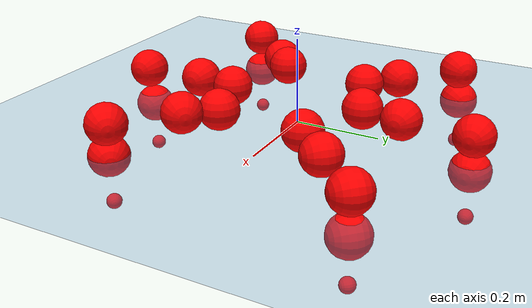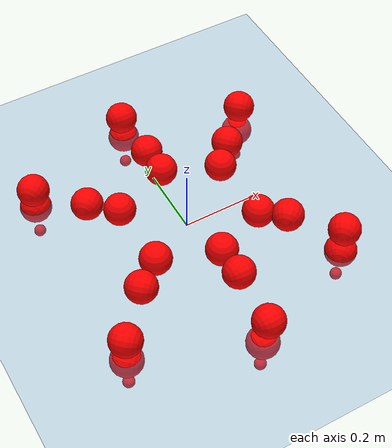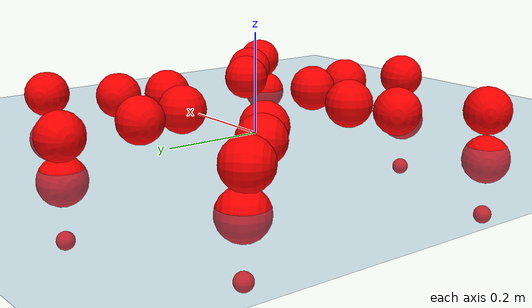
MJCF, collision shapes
<mujoco model="Golem">
  <compiler angle="radian" assetdir="assets" balanceinertia="true" inertiafromgeom="false"/>

  <option timestep="0.005" density="1.2" viscosity="2e-05"/>

  <size nkey="1"/>

  <visual>
    <quality shadowsize="8192"/>
    <map shadowclip="0.5"/>
  </visual>

  <default>
    <default class="/">
      <joint armature="0.01" damping="0.01" frictionloss="0.01"/>
      <geom contype="0" conaffinity="0" group="1" solref="-1000 -80"/>
      <site size="0.01 0.005 0.005" group="5"/>
      <general forcelimited="true" biastype="affine" gainprm="25" biasprm="0 -25 -0.5"/>
      <default class="visual">
        <geom type="mesh" group="2"/>
      </default>
      <default class="collision">
        <geom group="3"/>
      </default>
      <default class="foot">
        <geom size="0.01 0 0" condim="6" group="4" priority="1" solimp="0.015 1 0.01"/>
      </default>
      <default class="reward_collision_sphere">
        <geom group="5" rgba="1 0 0 1"/>
      </default>
    </default>
  </default>

  <asset>
    <texture type="skybox" colorspace="auto" name="//unnamed_texture_0" builtin="gradient" rgb1="0.95 0.95 0.95" rgb2="0.95 0.95 0.95" width="100" height="600"/>
    <texture type="2d" colorspace="auto" name="texplane" builtin="checker" rgb1="0.345 0.575 0.748" rgb2="0.345 0.575 0.748" markrgb="1 1 1" width="512" height="512"/>
    <material name="MatPlane" class="/" texture="texplane" texuniform="true" texrepeat="2 2" specular="0.9"/>
    <mesh name="body" class="/" file="body.stl" scale="0.001 0.001 0.001"/>
    <mesh name="coxa" class="/" file="coxa.stl" scale="0.001 0.001 0.001"/>
    <mesh name="femur" class="/" file="femur.stl" scale="0.001 0.001 0.001"/>
    <mesh name="tibia" class="/" file="tibia.stl" scale="0.001 0.001 0.001"/>
    <mesh name="tarsus" class="/" file="tarsus.stl" scale="0.001 0.001 0.001"/>
  </asset>

  <worldbody>
    <geom name="floor" class="/" size="100 100 0.125" type="plane" group="0" material="MatPlane"/>
    <light name="toplight_shadow" class="/" pos="0 0 5" dir="0.0990148 0.0990148 -0.990148" type="directional" ambient="0.04 0.04 0.04" diffuse="0.55 0.55 0.55" specular="0.12 0.12 0.12"/>
    <light name="toplight_fill" class="/" pos="0 0 5" dir="0.0990148 0.0990148 -0.990148" type="directional" castshadow="false" ambient="0.04 0.04 0.04" diffuse="0.3 0.3 0.3" specular="0.08 0.08 0.08"/>
    <body name="trunk" pos="0.0060921 0.000424682 0.00421391" quat="1 -9.50637e-05 -2.29102e-05 -8.96566e-06">
      <inertial pos="-0.000196028 0.00139418 0.00941817" quat="0.998795 -0.0298378 -0.00463013 0.0386781" mass="5.76275" diaginertia="0.0120605 0.0668241 0.00859462"/>
      <joint name="//unnamed_joint_0" type="free"/>
      <geom name="//unnamed_geom_1" class="/" pos="0 0 0.0617452" quat="1 0 0 0" type="mesh" rgba="0.9 0.9 0.9 1" mesh="body"/>
      <site name="imu" class="/" pos="0.115355 0.0102099 0.115506" size="0.0115002"/>
      <camera name="track" class="/" pos="0 -2.91699 0" quat="0.707107 0.707107 0 0" mode="trackcom"/>
      <camera name="ego_camera" class="/" pos="0.133484 0 0.0964769" quat="-0.5 -0.5 0.5 0.5"/>
      <body name="coxa_RR" pos="-0.182451 -0.128376 0.0680439" quat="0.38297 -0.000482807 -0.00084021 -0.92376">
        <inertial pos="0.00230897 0.000720924 0.00331197" quat="0.999613 -0.0142686 0.00132495 -0.0238379" mass="0.331739" diaginertia="0.0110831 0.0702065 0.00907433"/>
        <joint name="coxa_joint_RR" class="/" pos="0 0 0" axis="0.016013 0.0179449 -0.999711" range="-3.07257 2.94407" armature="0.013691" damping="0.00721893" frictionloss="0.0142505"/>
        <geom name="//unnamed_geom_2" class="/" type="mesh" rgba="0.2 0.2 0.2 1" mesh="coxa"/>
        <geom name="//unnamed_geom_3" class="reward_collision_sphere" size="0.0460009" pos="-0.0308041 0 0"/>
        <body name="femur_RR" pos="0.0604235 -0.0115868 -0.00978464" quat="0.499918 -0.49981 0.500123 0.500149">
          <inertial pos="0.00270306 -0.00957395 -0.0110811" quat="0.999999 0.000103222 0.00123813 -0.000681769" mass="0.304025" diaginertia="0.0106725 0.0656628 0.00752127"/>
          <joint name="femur_joint_RR" class="/" pos="0 0 0" axis="0.00283026 -0.00561727 -0.99998" stiffness="0.00547184" range="-3.13908 3.1428" armature="0.0104163" damping="0" frictionloss="0.00502344"/>
          <geom name="//unnamed_geom_4" class="/" type="mesh" rgba="0.9 0.9 0.9 1" mesh="femur"/>
          <geom name="//unnamed_geom_5" class="reward_collision_sphere" size="0.0460009"/>
          <body name="tibia_RR" pos="-0.00366025 -0.16727 0.0110883" quat="0.000739971 1 0.000249222 -0.000106796">
            <inertial pos="-0.00456607 0.0100931 -0.0024944" quat="0.999985 0.00165714 -0.00479983 0.00221911" mass="0.294756" diaginertia="0.0117679 0.0682339 0.00848306"/>
            <joint name="tibia_joint_RR" class="/" pos="0 0 0" axis="-0.00670249 0.0109792 0.999917" range="-3.13965 3.14093" armature="0.0122577" damping="0" frictionloss="0.0146524"/>
            <geom name="//unnamed_geom_6" class="/" type="mesh" rgba="0.2 0.2 0.2 1" mesh="tibia"/>
            <geom name="//unnamed_geom_7" class="reward_collision_sphere" size="0.0460009"/>
            <body name="tarsus_RR" pos="0.0941841 0.00206504 0.000798866" quat="1 -0.000200384 -0.000526036 0.000116355">
              <inertial pos="0.0670992 0.00207827 -0.000506523" quat="0.500538 0.515761 0.500349 0.482808" mass="0.283541" diaginertia="0.010272 0.0681899 0.00852836"/>
              <joint name="tarsus_joint_RR" class="/" pos="0 0 0" axis="0.00638141 0.00409883 0.999971" range="-2.92 2.90924" armature="0.0124159" damping="0" frictionloss="0.0125217"/>
              <geom name="//unnamed_geom_8" class="/" type="mesh" rgba="0.9 0.9 0.9 1" mesh="tarsus"/>
              <geom name="foot_1" class="foot" size="0.00906875" pos="0.115002 0 0" quat="0 -0.707107 0 0.707107"/>
              <geom name="//unnamed_geom_10" class="reward_collision_sphere" size="0.0460009"/>
              <geom name="//unnamed_geom_11" class="reward_collision_sphere" size="0.0172503" pos="0.110381 0 0"/>
              <site name="foot_1" class="foot" pos="0.115002 0 0" quat="0 -0.707107 0 0.707107" size="0.0115002"/>
            </body>
          </body>
        </body>
      </body>
      <body name="coxa_RM" pos="0.00976607 -0.193453 0.0629793" quat="0.706325 -0.00130368 0.000537497 -0.707887">
        <inertial pos="0.00173578 0.00504445 0.00263246" quat="0.998602 -0.0216428 0.0373744 -0.0304834" mass="0.275615" diaginertia="0.010134 0.0653052 0.00736654"/>
        <joint name="coxa_joint_RM" class="/" pos="0 0 0" axis="0.00708035 0.000693952 -0.999975" range="-3.13208 3.14264" armature="0.0121766" damping="0.00911299" frictionloss="0.0110567"/>
        <geom name="//unnamed_geom_12" class="/" type="mesh" rgba="0.2 0.2 0.2 1" mesh="coxa"/>
        <geom name="//unnamed_geom_13" class="reward_collision_sphere" size="0.0460009" pos="-0.0308041 0 0"/>
        <body name="femur_RM" pos="0.0587972 -0.000886646 0.00483717" quat="0.498342 -0.500491 0.497527 0.503618">
          <inertial pos="0.00992611 0.00470392 0.0113242" quat="0.999988 -0.000921649 -0.0042983 0.00213174" mass="0.271259" diaginertia="0.0112488 0.0661034 0.00793993"/>
          <joint name="femur_joint_RM" class="/" pos="0 0 0" axis="-0.00991644 -0.0192886 -0.999765" range="-3.15912 2.9469" armature="0.0101904" damping="0.0144983" frictionloss="0.0166783"/>
          <geom name="//unnamed_geom_14" class="/" type="mesh" rgba="0.9 0.9 0.9 1" mesh="femur"/>
          <geom name="//unnamed_geom_15" class="reward_collision_sphere" size="0.0460009"/>
          <body name="tibia_RM" pos="0.00703313 -0.162484 -0.0110328" quat="0.000250079 0.999998 0.0005537 -0.00189057">
            <inertial pos="-1.75314e-05 -0.00126494 -0.000975168" quat="0.999996 -0.00196979 -0.00118537 -0.00150699" mass="0.299115" diaginertia="0.0101791 0.0598905 0.00815465"/>
            <joint name="tibia_joint_RM" class="/" pos="0 0 0" axis="-0.0118645 -0.0471395 0.998818" stiffness="0.00746983" range="-3.19172 3.30913" armature="0.0111456" damping="0.0279436" frictionloss="0.00951284"/>
            <geom name="//unnamed_geom_16" class="/" type="mesh" rgba="0.2 0.2 0.2 1" mesh="tibia"/>
            <geom name="//unnamed_geom_17" class="reward_collision_sphere" size="0.0460009"/>
            <body name="tarsus_RM" pos="0.0971094 -0.00173874 0.00954981" quat="1 0.000116478 0.000183384 -0.000191741">
              <inertial pos="0.0626352 0.00222695 -0.00610245" quat="0.470096 0.514375 0.511123 0.503171" mass="0.295553" diaginertia="0.010361 0.0639079 0.00924113"/>
              <joint name="tarsus_joint_RM" class="/" pos="0 0 0" axis="0.00401552 0.0109229 0.999932" stiffness="0.020427" range="-2.96585 3.34482" armature="0.0114299" damping="0" frictionloss="0.012045"/>
              <geom name="//unnamed_geom_18" class="/" type="mesh" rgba="0.9 0.9 0.9 1" mesh="tarsus"/>
              <geom name="foot_2" class="foot" size="0.0106887" pos="0.115002 0 0" quat="0 -0.707107 0 0.707107"/>
              <geom name="//unnamed_geom_20" class="reward_collision_sphere" size="0.0460009"/>
              <geom name="//unnamed_geom_21" class="reward_collision_sphere" size="0.0172503" pos="0.110381 0 0"/>
              <site name="foot_2" class="foot" pos="0.115002 0 0" quat="0 -0.707107 0 0.707107" size="0.0115002"/>
            </body>
          </body>
        </body>
      </body>
      <body name="coxa_RF" pos="0.1829 -0.124615 0.0702976" quat="0.924723 0.000717171 -0.000667609 -0.380639">
        <inertial pos="-0.0023466 0.0120884 -0.000361378" quat="0.999972 0.00325495 -0.00607161 -0.00292656" mass="0.290091" diaginertia="0.0109858 0.0618602 0.00781913"/>
        <joint name="coxa_joint_RF" class="/" pos="0 0 0" axis="0.00574758 0.00891915 -0.999944" stiffness="0.00591516" range="-3.14558 3.01138" armature="0.0108798" damping="0.0410175" frictionloss="0.0106306"/>
        <geom name="//unnamed_geom_22" class="/" type="mesh" rgba="0.2 0.2 0.2 1" mesh="coxa"/>
        <geom name="//unnamed_geom_23" class="reward_collision_sphere" size="0.0460009" pos="-0.0308041 0 0"/>
        <body name="femur_RF" pos="0.0507256 0.0037458 0.00475689" quat="0.499818 -0.500603 0.49922 0.500358">
          <inertial pos="0.000672507 -0.000275748 -0.00752006" quat="0.99998 0.00021685 -0.00505301 0.00379868" mass="0.311742" diaginertia="0.0112535 0.070935 0.0077195"/>
          <joint name="femur_joint_RF" class="/" pos="0 0 0" axis="0.00399914 0.00649118 -0.999971" stiffness="0.00327787" range="-3.33293 3.12718" armature="0.0123277" damping="0.0162913" frictionloss="0.0154255"/>
          <geom name="//unnamed_geom_24" class="/" type="mesh" rgba="0.9 0.9 0.9 1" mesh="femur"/>
          <geom name="//unnamed_geom_25" class="reward_collision_sphere" size="0.0460009"/>
          <body name="tibia_RF" pos="0.00621289 -0.157544 -0.00365903" quat="0.000438917 1 -0.000855868 -0.000255271">
            <inertial pos="-0.00615029 0.00403932 0.000221643" quat="0.998597 0.0229262 0.0217523 -0.0424883" mass="0.281854" diaginertia="0.0117789 0.0702976 0.0082055"/>
            <joint name="tibia_joint_RF" class="/" pos="0 0 0" axis="0.0302095 0.0197841 0.999348" stiffness="0.00339721" range="-3.13867 3.14049" armature="0.0114248" damping="0" frictionloss="0.0107209"/>
            <geom name="//unnamed_geom_26" class="/" type="mesh" rgba="0.2 0.2 0.2 1" mesh="tibia"/>
            <geom name="//unnamed_geom_27" class="reward_collision_sphere" size="0.0460009"/>
            <body name="tarsus_RF" pos="0.0791779 9.40209e-05 0.0121585" quat="0.999997 -0.00157291 -0.000452591 -0.00167344">
              <inertial pos="0.0585737 0.00840775 -0.00172777" quat="0.497754 0.497131 0.497029 0.508" mass="0.349862" diaginertia="0.0117784 0.0737291 0.00806594"/>
              <joint name="tarsus_joint_RF" class="/" pos="0 0 0" axis="-0.0360687 0.0160675 0.99922" range="-2.99837 3.14191" armature="0.0113716" damping="0" frictionloss="0.0123781"/>
              <geom name="//unnamed_geom_28" class="/" type="mesh" rgba="0.9 0.9 0.9 1" mesh="tarsus"/>
              <geom name="foot_3" class="foot" size="0.0114841" pos="0.115002 0 0" quat="0 -0.707107 0 0.707107"/>
              <geom name="//unnamed_geom_30" class="reward_collision_sphere" size="0.0460009"/>
              <geom name="//unnamed_geom_31" class="reward_collision_sphere" size="0.0172503" pos="0.110381 0 0"/>
              <site name="foot_3" class="foot" pos="0.115002 0 0" quat="0 -0.707107 0 0.707107" size="0.0115002"/>
            </body>
          </body>
        </body>
      </body>
      <body name="coxa_LR" pos="-0.18518 0.120684 0.0554835" quat="0.381596 -0.0013832 0.000467965 0.924328">
        <inertial pos="0.000268462 0.000577446 -0.00837928" quat="0.999983 -0.000781938 -0.00471943 0.00344489" mass="0.300715" diaginertia="0.0112156 0.0630752 0.00915883"/>
        <joint name="coxa_joint_LR" class="/" pos="0 0 0" axis="-0.00419125 0.00169535 -0.99999" stiffness="0.0349457" range="-3.06395 3.09935" armature="0.0132461" damping="0.0370598" frictionloss="0.0172637"/>
        <geom name="//unnamed_geom_32" class="/" type="mesh" rgba="0.2 0.2 0.2 1" mesh="coxa"/>
        <geom name="//unnamed_geom_33" class="reward_collision_sphere" size="0.0460009" pos="-0.0308041 0 0"/>
        <body name="femur_LR" pos="0.0627359 0.00614523 0.000103367" quat="0.500143 -0.499869 0.500163 0.499825">
          <inertial pos="-0.00907698 0.00318127 -0.0067089" quat="0.999934 -0.00403023 -0.0100559 0.00369416" mass="0.341136" diaginertia="0.0109612 0.0651599 0.00808392"/>
          <joint name="femur_joint_LR" class="/" pos="0 0 0" axis="0.00187195 -0.0177908 0.99984" range="-2.91845 3.3309" armature="0.0171981" damping="0.0196124" frictionloss="0.0125021"/>
          <geom name="//unnamed_geom_34" class="/" type="mesh" rgba="0.9 0.9 0.9 1" mesh="femur"/>
          <geom name="//unnamed_geom_35" class="reward_collision_sphere" size="0.0460009"/>
          <body name="tibia_LR" pos="-0.00574199 -0.159853 -0.0018018" quat="-0.00172224 0.999998 -0.00116089 -0.000490487">
            <inertial pos="-0.0044245 0.00703848 -0.000871762" quat="0.999988 -0.0011498 -0.00100653 0.00460074" mass="0.269828" diaginertia="0.0110586 0.0579157 0.00873735"/>
            <joint name="tibia_joint_LR" class="/" pos="0 0 0" axis="0.0242065 -0.0359125 -0.999062" stiffness="0.0222312" range="-3.12449 3.30361" armature="0.0128784" damping="0" frictionloss="0.0124014"/>
            <geom name="//unnamed_geom_36" class="/" type="mesh" rgba="0.2 0.2 0.2 1" mesh="tibia"/>
            <geom name="//unnamed_geom_37" class="reward_collision_sphere" size="0.0460009"/>
            <body name="tarsus_LR" pos="0.0793884 0.00415014 0.00572238" quat="0.999988 0.000369138 0.00259387 0.00409664">
              <inertial pos="0.0697628 0.00771918 0.00143589" quat="0.501168 0.500793 0.498306 0.499727" mass="0.305841" diaginertia="0.011191 0.0725837 0.00775403"/>
              <joint name="tarsus_joint_LR" class="/" pos="0 0 0" axis="-1.53691e-06 -3.4399e-05 -1" stiffness="0.0269724" range="-3.17332 3.17395" armature="0.00973294" damping="0.0139113" frictionloss="0.00634204"/>
              <geom name="//unnamed_geom_38" class="/" type="mesh" rgba="0.9 0.9 0.9 1" mesh="tarsus"/>
              <geom name="foot_4" class="foot" size="0.0120761" pos="0.115002 0 0" quat="0.707107 0 -0.707107 0"/>
              <geom name="//unnamed_geom_40" class="reward_collision_sphere" size="0.0460009"/>
              <geom name="//unnamed_geom_41" class="reward_collision_sphere" size="0.0172503" pos="0.110381 0 0"/>
              <site name="foot_4" class="foot" pos="0.115002 0 0" quat="0.707107 0 -0.707107 0" size="0.0115002"/>
            </body>
          </body>
        </body>
      </body>
      <body name="coxa_LM" pos="0.00253617 0.19533 0.0648861" quat="0.707688 -0.000623522 -0.000936529 0.706524">
        <inertial pos="-0.00870321 0.000914937 -0.00199607" quat="0.999935 0.0100696 -0.00214812 -0.00487535" mass="0.335336" diaginertia="0.010809 0.0730744 0.0093759"/>
        <joint name="coxa_joint_LM" class="/" pos="0 0 0" axis="-0.00454002 0.0149315 -0.999878" range="-3.1229 3.1254" armature="0.012297" damping="0.0276365" frictionloss="0.0145009"/>
        <geom name="//unnamed_geom_42" class="/" type="mesh" rgba="0.2 0.2 0.2 1" mesh="coxa"/>
        <geom name="//unnamed_geom_43" class="reward_collision_sphere" size="0.0460009" pos="-0.0308041 0 0"/>
        <body name="femur_LM" pos="0.0596495 -0.000602796 -0.00747835" quat="0.49999 -0.499932 0.500021 0.500057">
          <inertial pos="-0.00555043 0.000408721 0.00441832" quat="0.999958 -0.00821023 -0.00189526 0.00357387" mass="0.288542" diaginertia="0.0120712 0.0598793 0.00689293"/>
          <joint name="femur_joint_LM" class="/" pos="0 0 0" axis="0.0209109 0.0467661 0.998687" stiffness="0.0161578" range="-3.33666 3.21119" armature="0.0115072" damping="0.0650633" frictionloss="0.0113786"/>
          <geom name="//unnamed_geom_44" class="/" type="mesh" rgba="0.9 0.9 0.9 1" mesh="femur"/>
          <geom name="//unnamed_geom_45" class="reward_collision_sphere" size="0.0460009"/>
          <body name="tibia_LM" pos="0.0047642 -0.158959 0.00187374" quat="0.000690076 1 -0.000490328 -0.00027394">
            <inertial pos="0.00991875 -0.000193844 -0.000316397" quat="0.999957 0.00760613 -0.00329924 0.00421943" mass="0.309259" diaginertia="0.0115143 0.0686803 0.00799925"/>
            <joint name="tibia_joint_LM" class="/" pos="0 0 0" axis="0.000262666 -0.000713658 -1" range="-3.16663 3.21062" armature="0.0151595" damping="0" frictionloss="0.0183364"/>
            <geom name="//unnamed_geom_46" class="/" type="mesh" rgba="0.2 0.2 0.2 1" mesh="tibia"/>
            <geom name="//unnamed_geom_47" class="reward_collision_sphere" size="0.0460009"/>
            <body name="tarsus_LM" pos="0.0803895 -0.00144002 0.00205667" quat="1 0.00090123 -0.00026009 -0.000142479">
              <inertial pos="0.0691557 -2.77609e-05 0.00551022" quat="0.529409 0.472328 0.504057 0.492504" mass="0.301386" diaginertia="0.0119622 0.0659496 0.00871733"/>
              <joint name="tarsus_joint_LM" class="/" pos="0 0 0" axis="2.58905e-05 -0.000745247 -1" range="-3.28082 3.13602" armature="0.0103607" damping="0" frictionloss="0.0121825"/>
              <geom name="//unnamed_geom_48" class="/" type="mesh" rgba="0.9 0.9 0.9 1" mesh="tarsus"/>
              <geom name="foot_5" class="foot" size="0.00633965" pos="0.115002 0 0" quat="0.707107 0 -0.707107 0"/>
              <geom name="//unnamed_geom_50" class="reward_collision_sphere" size="0.0460009"/>
              <geom name="//unnamed_geom_51" class="reward_collision_sphere" size="0.0172503" pos="0.110381 0 0"/>
              <site name="foot_5" class="foot" pos="0.115002 0 0" quat="0.707107 0 -0.707107 0" size="0.0115002"/>
            </body>
          </body>
        </body>
      </body>
      <body name="coxa_LF" pos="0.181477 0.120603 0.0619311" quat="0.924173 -0.000465727 0.00100751 0.381972">
        <inertial pos="-0.00022973 0.0109464 0.00225204" quat="0.998998 0.00762827 0.0188233 -0.0398782" mass="0.256076" diaginertia="0.00956604 0.0568748 0.00716943"/>
        <joint name="coxa_joint_LF" class="/" pos="0 0 0" axis="-0.01859 -0.0175772 -0.999673" stiffness="0.034325" range="-3.27482 3.15508" armature="0.0091372" damping="0" frictionloss="0.0160959"/>
        <geom name="//unnamed_geom_52" class="/" type="mesh" rgba="0.2 0.2 0.2 1" mesh="coxa"/>
        <geom name="//unnamed_geom_53" class="reward_collision_sphere" size="0.0460009" pos="-0.0308041 0 0"/>
        <body name="femur_LF" pos="0.070063 0.00606379 -0.00733109" quat="0.50024 -0.499768 0.499925 0.500067">
          <inertial pos="0.00230527 -0.0057409 0.00873153" quat="0.999992 -0.0028056 -0.00229193 0.00175671" mass="0.286695" diaginertia="0.0104067 0.0612356 0.00853275"/>
          <joint name="femur_joint_LF" class="/" pos="0 0 0" axis="-0.00282034 0.00500469 0.999983" stiffness="0.0575637" range="-3.12998 3.14484" armature="0.00816919" damping="0.0166406" frictionloss="0.0123582"/>
          <geom name="//unnamed_geom_54" class="/" type="mesh" rgba="0.9 0.9 0.9 1" mesh="femur"/>
          <geom name="//unnamed_geom_55" class="reward_collision_sphere" size="0.0460009"/>
          <body name="tibia_LF" pos="0.000639535 -0.152175 0.00216839" quat="0.000273151 1 0.000717851 -0.000116253">
            <inertial pos="-0.00977925 -0.00983846 -0.0114274" quat="0.999948 0.00383234 -0.00943679 3.25166e-05" mass="0.309775" diaginertia="0.0118812 0.0627659 0.00734107"/>
            <joint name="tibia_joint_LF" class="/" pos="0 0 0" axis="0.0091302 0.0124302 -0.999881" range="-3.26252 3.33497" armature="0.0117112" damping="0.0154513" frictionloss="0.0147236"/>
            <geom name="//unnamed_geom_56" class="/" type="mesh" rgba="0.2 0.2 0.2 1" mesh="tibia"/>
            <geom name="//unnamed_geom_57" class="reward_collision_sphere" size="0.0460009"/>
            <body name="tarsus_LF" pos="0.0959781 -0.00566171 -0.00199856" quat="1 0.000359098 0.000523154 -0.000201132">
              <inertial pos="0.0676464 0.00146863 -0.00975779" quat="0.501712 0.526235 0.470236 0.50024" mass="0.306754" diaginertia="0.0103535 0.0683365 0.0073314"/>
              <joint name="tarsus_joint_LF" class="/" pos="0 0 0" axis="0.00183911 0.000195545 -0.999998" range="-2.97558 3.3424" armature="0.00860248" damping="0.00597843" frictionloss="0.00878822"/>
              <geom name="//unnamed_geom_58" class="/" type="mesh" rgba="0.9 0.9 0.9 1" mesh="tarsus"/>
              <geom name="foot_6" class="foot" size="0.00900789" pos="0.115002 0 0" quat="0.707107 0 -0.707107 0"/>
              <geom name="//unnamed_geom_60" class="reward_collision_sphere" size="0.0460009"/>
              <geom name="//unnamed_geom_61" class="reward_collision_sphere" size="0.0172503" pos="0.110381 0 0"/>
              <site name="foot_6" class="foot" pos="0.115002 0 0" quat="0.707107 0 -0.707107 0" size="0.0115002"/>
            </body>
          </body>
        </body>
      </body>
    </body>
  </worldbody>

  <contact>
    <pair class="/" geom1="floor" geom2="foot_1" name="//unnamed_contact_0"/>
    <pair class="/" geom1="floor" geom2="foot_2" name="//unnamed_contact_1"/>
    <pair class="/" geom1="floor" geom2="foot_3" name="//unnamed_contact_2"/>
    <pair class="/" geom1="floor" geom2="foot_4" name="//unnamed_contact_3"/>
    <pair class="/" geom1="floor" geom2="foot_5" name="//unnamed_contact_4"/>
    <pair class="/" geom1="floor" geom2="foot_6" name="//unnamed_contact_5"/>
  </contact>

  <actuator>
    <general name="coxa_joint_RR" class="/" joint="coxa_joint_RR" forcerange="-8.58473 8.58473" gainprm="20.621" biasprm="0 -20.621 -0.56868"/>
    <general name="femur_joint_RR" class="/" joint="femur_joint_RR" forcerange="-8.91997 8.91997" gainprm="20.621" biasprm="0 -20.621 -0.56868"/>
    <general name="tibia_joint_RR" class="/" joint="tibia_joint_RR" forcerange="-8.23601 8.23601" gainprm="20.621" biasprm="0 -20.621 -0.56868"/>
    <general name="tarsus_joint_RR" class="/" joint="tarsus_joint_RR" forcerange="-8.80306 8.80306" gainprm="20.621" biasprm="0 -20.621 -0.56868"/>
    <general name="coxa_joint_RM" class="/" joint="coxa_joint_RM" forcerange="-7.96264 7.96264" gainprm="20.621" biasprm="0 -20.621 -0.56868"/>
    <general name="femur_joint_RM" class="/" joint="femur_joint_RM" forcerange="-8.92277 8.92277" gainprm="20.621" biasprm="0 -20.621 -0.56868"/>
    <general name="tibia_joint_RM" class="/" joint="tibia_joint_RM" forcerange="-8.34717 8.34717" gainprm="20.621" biasprm="0 -20.621 -0.56868"/>
    <general name="tarsus_joint_RM" class="/" joint="tarsus_joint_RM" forcerange="-10.6076 10.6076" gainprm="20.621" biasprm="0 -20.621 -0.56868"/>
    <general name="coxa_joint_RF" class="/" joint="coxa_joint_RF" forcerange="-7.9504 7.9504" gainprm="20.621" biasprm="0 -20.621 -0.56868"/>
    <general name="femur_joint_RF" class="/" joint="femur_joint_RF" forcerange="-8.51027 8.51027" gainprm="20.621" biasprm="0 -20.621 -0.56868"/>
    <general name="tibia_joint_RF" class="/" joint="tibia_joint_RF" forcerange="-8.30654 8.30654" gainprm="20.621" biasprm="0 -20.621 -0.56868"/>
    <general name="tarsus_joint_RF" class="/" joint="tarsus_joint_RF" forcerange="-8.68425 8.68425" gainprm="20.621" biasprm="0 -20.621 -0.56868"/>
    <general name="coxa_joint_LR" class="/" joint="coxa_joint_LR" forcerange="-9.08633 9.08633" gainprm="20.621" biasprm="0 -20.621 -0.56868"/>
    <general name="femur_joint_LR" class="/" joint="femur_joint_LR" forcerange="-11.0259 11.0259" gainprm="20.621" biasprm="0 -20.621 -0.56868"/>
    <general name="tibia_joint_LR" class="/" joint="tibia_joint_LR" forcerange="-8.50511 8.50511" gainprm="20.621" biasprm="0 -20.621 -0.56868"/>
    <general name="tarsus_joint_LR" class="/" joint="tarsus_joint_LR" forcerange="-8.22201 8.22201" gainprm="20.621" biasprm="0 -20.621 -0.56868"/>
    <general name="coxa_joint_LM" class="/" joint="coxa_joint_LM" forcerange="-7.85249 7.85249" gainprm="20.621" biasprm="0 -20.621 -0.56868"/>
    <general name="femur_joint_LM" class="/" joint="femur_joint_LM" forcerange="-9.59644 9.59644" gainprm="20.621" biasprm="0 -20.621 -0.56868"/>
    <general name="tibia_joint_LM" class="/" joint="tibia_joint_LM" forcerange="-8.39384 8.39384" gainprm="20.621" biasprm="0 -20.621 -0.56868"/>
    <general name="tarsus_joint_LM" class="/" joint="tarsus_joint_LM" forcerange="-6.84108 6.84108" gainprm="20.621" biasprm="0 -20.621 -0.56868"/>
    <general name="coxa_joint_LF" class="/" joint="coxa_joint_LF" forcerange="-8.9265 8.9265" gainprm="20.621" biasprm="0 -20.621 -0.56868"/>
    <general name="femur_joint_LF" class="/" joint="femur_joint_LF" forcerange="-6.2985 6.2985" gainprm="20.621" biasprm="0 -20.621 -0.56868"/>
    <general name="tibia_joint_LF" class="/" joint="tibia_joint_LF" forcerange="-8.51312 8.51312" gainprm="20.621" biasprm="0 -20.621 -0.56868"/>
    <general name="tarsus_joint_LF" class="/" joint="tarsus_joint_LF" forcerange="-12.0941 12.0941" gainprm="20.621" biasprm="0 -20.621 -0.56868"/>
  </actuator>

  <sensor>
    <gyro site="imu" name="imu_angular_velocity"/>
    <velocimeter site="imu" name="imu_linear_velocity"/>
    <framelinvel objtype="site" objname="foot_1" name="foot_1_global_linear_velocity"/>
    <framelinvel objtype="site" objname="foot_2" name="foot_2_global_linear_velocity"/>
    <framelinvel objtype="site" objname="foot_3" name="foot_3_global_linear_velocity"/>
    <framelinvel objtype="site" objname="foot_4" name="foot_4_global_linear_velocity"/>
    <framelinvel objtype="site" objname="foot_5" name="foot_5_global_linear_velocity"/>
    <framelinvel objtype="site" objname="foot_6" name="foot_6_global_linear_velocity"/>
  </sensor>

  <keyframe>
    <key name="home" qpos="0 0 0.1457 1 0 0 0 0 0 0 0 0 0 0 0 0 0 0 0 0 0 0 0 0 0 0 0 0 0 0 0"/>
  </keyframe>
</mujoco>
